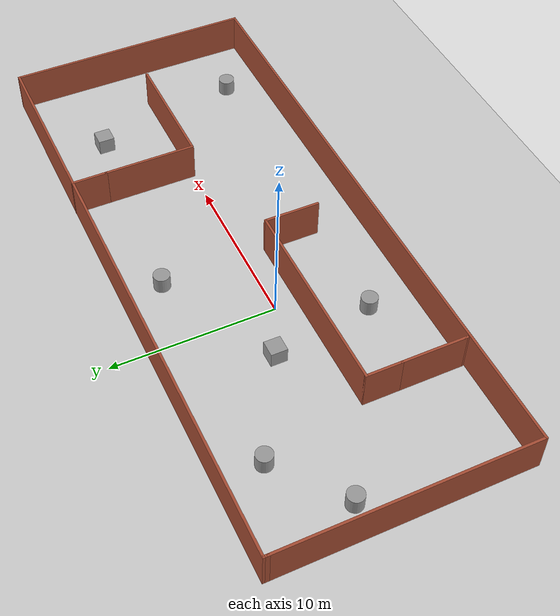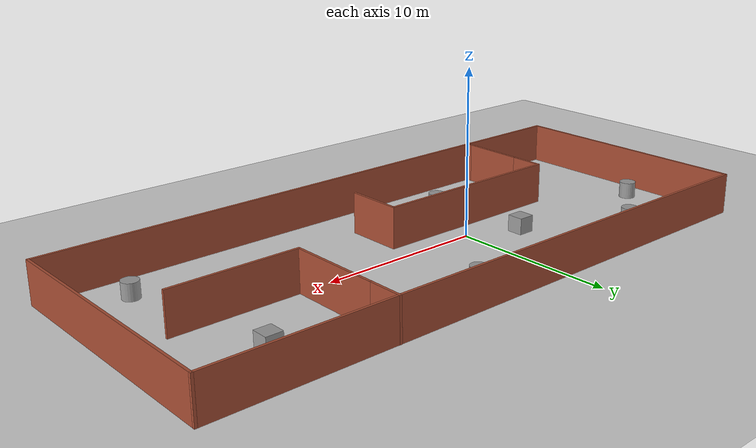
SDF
<sdf version="1.6">
 <world name="default">
  <light name="sun" type="directional">
   <pose>0 0 10 0 -0 0</pose>
   <diffuse>0.8 0.8 0.8 1</diffuse>
   <specular>0.2 0.2 0.2 1</specular>
   <attenuation>
    <range>1000</range>
    <constant>0.9</constant>
    <linear>0.01</linear>
    <quadratic>0.001</quadratic>
   </attenuation>
   <direction>-0.5 0.1 -0.9</direction>
  </light>
  <model name="ground_plane">
   <static>1</static>
   <link name="link">
    <collision name="collision">
     <geometry><plane><normal>0 0 1</normal><size>100 100</size></plane></geometry>
     <surface>
      <contact><collide_bitmask>65535</collide_bitmask></contact>
      <friction><ode><mu>100</mu><mu2>50</mu2></ode></friction>
     </surface>
    </collision>
    <visual name="visual">
     <cast_shadows>0</cast_shadows>
     <geometry><plane><normal>0 0 1</normal><size>100 100</size></plane></geometry>
     <material>
      <script><uri>file://media/materials/scripts/gazebo.material</uri><name>Gazebo/Concrete</name></script>
     </material>
    </visual>
   </link>
  </model>
  <gravity>0 0 -9.8</gravity>
  <magnetic_field>6e-06 2.3e-05 -4.2e-05</magnetic_field>
  <atmosphere type="adiabatic"/>
  <physics name="default_physics" default="0" type="ode">
   <max_step_size>0.001</max_step_size>
   <real_time_factor>1</real_time_factor>
   <real_time_update_rate>1000</real_time_update_rate>
  </physics>
  <scene><ambient>0.4 0.4 0.4 1</ambient><background>0.7 0.7 0.7 1</background><shadows>1</shadows></scene>
  <audio><device>default</device></audio>
  <spherical_coordinates>
   <surface_model>EARTH_WGS84</surface_model>
   <latitude_deg>0</latitude_deg>
   <longitude_deg>0</longitude_deg>
   <elevation>0</elevation>
   <heading_deg>0</heading_deg>
  </spherical_coordinates>
  <model name="demo_world">
   <pose>3.9983 0.012365 0 0 -0 0</pose>
   <link name="Wall_2">
    <collision name="Wall_2_Collision">
     <geometry><box><size>15.25 0.15 2.5</size></box></geometry>
     <pose>0 0 1.25 0 -0 0</pose>
    </collision>
    <visual name="Wall_2_Visual">
     <pose>0 0 1.25 0 -0 0</pose>
     <geometry><box><size>15.25 0.15 2.5</size></box></geometry>
     <material>
      <script><uri>file://media/materials/scripts/gazebo.material</uri><name>Gazebo/Bricks</name></script>
      <ambient>1 1 1 1</ambient>
     </material>
     <meta><layer>0</layer></meta>
    </visual>
    <pose>-18.675 -0.125 0 0 -0 -1.5708</pose>
   </link>
   <link name="Wall_3">
    <collision name="Wall_3_Collision">
     <geometry><box><size>37.5 0.15 2.5</size></box></geometry>
     <pose>0 0 1.25 0 -0 0</pose>
    </collision>
    <visual name="Wall_3_Visual">
     <pose>0 0 1.25 0 -0 0</pose>
     <geometry><box><size>37.5 0.15 2.5</size></box></geometry>
     <material>
      <script><uri>file://media/materials/scripts/gazebo.material</uri><name>Gazebo/Bricks</name></script>
      <ambient>1 1 1 1</ambient>
     </material>
     <meta><layer>0</layer></meta>
    </visual>
    <pose>0 -7.675 0 0 -0 0</pose>
   </link>
   <link name="Wall_4">
    <collision name="Wall_4_Collision">
     <geometry><box><size>15.5 0.15 2.5</size></box></geometry>
     <pose>0 0 1.25 0 -0 0</pose>
    </collision>
    <visual name="Wall_4_Visual">
     <pose>0 0 1.25 0 -0 0</pose>
     <geometry><box><size>15.5 0.15 2.5</size></box></geometry>
     <material>
      <script><uri>file://media/materials/scripts/gazebo.material</uri><name>Gazebo/Bricks</name></script>
      <ambient>1 1 1 1</ambient>
     </material>
     <meta><layer>0</layer></meta>
    </visual>
    <pose>18.675 0 0 0 -0 1.5708</pose>
   </link>
   <link name="Wall_5">
    <collision name="Wall_5_Collision">
     <geometry><box><size>37.5008 0.15 2.5</size></box></geometry>
     <pose>0 0 1.25 0 -0 0</pose>
    </collision>
    <visual name="Wall_5_Visual">
     <pose>0 0 1.25 0 -0 0</pose>
     <geometry><box><size>37.5008 0.15 2.5</size></box></geometry>
     <material>
      <script><uri>file://media/materials/scripts/gazebo.material</uri><name>Gazebo/Bricks</name></script>
      <ambient>1 1 1 1</ambient>
     </material>
     <meta><layer>0</layer></meta>
    </visual>
    <pose>0 7.675 0 0 -0 3.14159</pose>
   </link>
   <link name="Wall_6">
    <collision name="Wall_6_Collision">
     <geometry><box><size>0.4 0.15 2.5</size></box></geometry>
     <pose>0 0 1.25 0 -0 0</pose>
    </collision>
    <visual name="Wall_6_Visual">
     <pose>0 0 1.25 0 -0 0</pose>
     <geometry><box><size>0.4 0.15 2.5</size></box></geometry>
     <material>
      <script><uri>file://media/materials/scripts/gazebo.material</uri><name>Gazebo/Bricks</name></script>
      <ambient>1 1 1 1</ambient>
     </material>
     <meta><layer>0</layer></meta>
    </visual>
    <pose>-18.675 7.55 0 0 -0 -1.5708</pose>
   </link>
   <static>1</static>
  </model>
  <model name="Untitled">
   <pose>-1.67237 -4.43752 0 0 -0 0</pose>
   <link name="Wall_12">
    <collision name="Wall_12_Collision">
     <geometry><box><size>0.25 0.15 2.5</size></box></geometry>
     <pose>0 0 1.25 0 -0 0</pose>
    </collision>
    <visual name="Wall_12_Visual">
     <pose>0 0 1.25 0 -0 0</pose>
     <geometry><box><size>0.25 0.15 2.5</size></box></geometry>
     <material>
      <script><uri>file://media/materials/scripts/gazebo.material</uri><name>Gazebo/Bricks</name></script>
      <ambient>1 1 1 1</ambient>
     </material>
     <meta><layer>0</layer></meta>
    </visual>
    <pose>-6.05 -2.975 0 0 -0 -1.5708</pose>
   </link>
   <link name="Wall_14">
    <collision name="Wall_14_Collision">
     <geometry><box><size>2.25 0.15 2.5</size></box></geometry>
     <pose>0 0 1.25 0 -0 0</pose>
    </collision>
    <visual name="Wall_14_Visual">
     <pose>0 0 1.25 0 -0 0</pose>
     <geometry><box><size>2.25 0.15 2.5</size></box></geometry>
     <material>
      <script><uri>file://media/materials/scripts/gazebo.material</uri><name>Gazebo/Bricks</name></script>
      <ambient>1 1 1 1</ambient>
     </material>
     <meta><layer>0</layer></meta>
    </visual>
    <pose>-6.05 1.975 0 0 -0 1.5708</pose>
   </link>
   <link name="Wall_15">
    <collision name="Wall_15_Collision">
     <geometry><box><size>12.25 0.15 2.5</size></box></geometry>
     <pose>0 0 1.25 0 -0 0</pose>
    </collision>
    <visual name="Wall_15_Visual">
     <pose>0 0 1.25 0 -0 0</pose>
     <geometry><box><size>12.25 0.15 2.5</size></box></geometry>
     <material>
      <script><uri>file://media/materials/scripts/gazebo.material</uri><name>Gazebo/Bricks</name></script>
      <ambient>1 1 1 1</ambient>
     </material>
     <meta><layer>0</layer></meta>
    </visual>
    <pose>0 3.025 0 0 -0 0</pose>
   </link>
   <link name="Wall_16">
    <collision name="Wall_16_Collision">
     <geometry><box><size>3.5 0.15 2.5</size></box></geometry>
     <pose>0 0 1.25 0 -0 0</pose>
    </collision>
    <visual name="Wall_16_Visual">
     <pose>0 0 1.25 0 -0 0</pose>
     <geometry><box><size>3.5 0.15 2.5</size></box></geometry>
     <material>
      <script><uri>file://media/materials/scripts/gazebo.material</uri><name>Gazebo/Bricks</name></script>
      <ambient>1 1 1 1</ambient>
     </material>
     <meta><layer>0</layer></meta>
    </visual>
    <pose>6.05 1.35 0 0 -0 -1.5708</pose>
   </link>
   <link name="Wall_9">
    <collision name="Wall_9_Collision">
     <geometry><box><size>4 0.15 2.5</size></box></geometry>
     <pose>0 0 1.25 0 -0 0</pose>
    </collision>
    <visual name="Wall_9_Visual">
     <pose>0 0 1.25 0 -0 0</pose>
     <geometry><box><size>4 0.15 2.5</size></box></geometry>
     <material>
      <script><uri>file://media/materials/scripts/gazebo.material</uri><name>Gazebo/Bricks</name></script>
      <ambient>1 1 1 1</ambient>
     </material>
     <meta><layer>0</layer></meta>
    </visual>
    <pose>-6.05 -1 0 0 -0 -1.5708</pose>
   </link>
   <static>1</static>
  </model>
  <model name="Untitled2">
   <pose>15.7234 3.85268 0 0 -0 0</pose>
   <link name="Wall_10">
    <collision name="Wall_10_Collision">
     <geometry><box><size>2.25 0.15 2.5</size></box></geometry>
     <pose>0 0 1.25 0 -0 0</pose>
    </collision>
    <visual name="Wall_10_Visual">
     <pose>0 0 1.25 0 -0 0</pose>
     <geometry><box><size>2.25 0.15 2.5</size></box></geometry>
     <material>
      <script><uri>file://media/materials/scripts/gazebo.material</uri><name>Gazebo/Bricks</name></script>
      <ambient>1 1 1 1</ambient>
     </material>
     <meta><layer>0</layer></meta>
    </visual>
    <pose>-3.8 2.8 0 0 -0 1.5708</pose>
   </link>
   <link name="Wall_7">
    <collision name="Wall_7_Collision">
     <geometry><box><size>5.75 0.15 2.5</size></box></geometry>
     <pose>0 0 1.25 0 -0 0</pose>
    </collision>
    <visual name="Wall_7_Visual">
     <pose>0 0 1.25 0 -0 0</pose>
     <geometry><box><size>5.75 0.15 2.5</size></box></geometry>
     <material>
      <script><uri>file://media/materials/scripts/gazebo.material</uri><name>Gazebo/Bricks</name></script>
      <ambient>1 1 1 1</ambient>
     </material>
     <meta><layer>0</layer></meta>
    </visual>
    <pose>-3.8 -1.05 0 0 -0 -1.5708</pose>
   </link>
   <link name="Wall_8">
    <collision name="Wall_8_Collision">
     <geometry><box><size>7.75 0.15 2.5</size></box></geometry>
     <pose>0 0 1.25 0 -0 0</pose>
    </collision>
    <visual name="Wall_8_Visual">
     <pose>0 0 1.25 0 -0 0</pose>
     <geometry><box><size>7.75 0.15 2.5</size></box></geometry>
     <material>
      <script><uri>file://media/materials/scripts/gazebo.material</uri><name>Gazebo/Bricks</name></script>
      <ambient>1 1 1 1</ambient>
     </material>
     <meta><layer>0</layer></meta>
    </visual>
    <pose>0 -3.85 0 0 -0 0</pose>
   </link>
   <static>1</static>
  </model>
  <model name="unit_cylinder">
   <pose>-8.93216 4.91079 0.499992 -3e-06 4e-06 0</pose>
   <link name="link">
    <inertial>
     <mass>1</mass>
     <inertia><ixx>0.145833</ixx><ixy>0</ixy><ixz>0</ixz><iyy>0.145833</iyy><iyz>0</iyz><izz>0.125</izz></inertia>
    </inertial>
    <collision name="collision">
     <geometry><cylinder><radius>0.5</radius><length>1</length></cylinder></geometry>
    </collision>
    <visual name="visual">
     <geometry><cylinder><radius>0.5</radius><length>1</length></cylinder></geometry>
     <material>
      <script><name>Gazebo/Grey</name><uri>file://media/materials/scripts/gazebo.material</uri></script>
     </material>
    </visual>
   </link>
  </model>
  <model name="unit_cylinder_0">
   <pose>-12.8401 1.81598 0.499998 3e-06 -4e-06 0</pose>
   <link name="link">
    <inertial>
     <mass>1</mass>
     <inertia><ixx>0.145833</ixx><ixy>0</ixy><ixz>0</ixz><iyy>0.145833</iyy><iyz>0</iyz><izz>0.125</izz></inertia>
    </inertial>
    <collision name="collision">
     <geometry><cylinder><radius>0.5</radius><length>1</length></cylinder></geometry>
    </collision>
    <visual name="visual">
     <geometry><cylinder><radius>0.5</radius><length>1</length></cylinder></geometry>
     <material>
      <script><name>Gazebo/Grey</name><uri>file://media/materials/scripts/gazebo.material</uri></script>
     </material>
    </visual>
   </link>
  </model>
  <model name="unit_box">
   <pose>-3.0242 1.46134 0.499995 0 1e-05 0</pose>
   <link name="link">
    <inertial>
     <mass>1</mass>
     <inertia>
      <ixx>0.166667</ixx>
      <ixy>0</ixy>
      <ixz>0</ixz>
      <iyy>0.166667</iyy>
      <iyz>0</iyz>
      <izz>0.166667</izz>
     </inertia>
    </inertial>
    <collision name="collision"><geometry><box><size>1 1 1</size></box></geometry></collision>
    <visual name="visual">
     <geometry><box><size>1 1 1</size></box></geometry>
     <material>
      <script><name>Gazebo/Grey</name><uri>file://media/materials/scripts/gazebo.material</uri></script>
     </material>
    </visual>
   </link>
  </model>
  <model name="unit_cylinder_1">
   <pose>4.26009 5.17823 0.499997 3e-06 3e-06 0</pose>
   <link name="link">
    <inertial>
     <mass>1</mass>
     <inertia><ixx>0.145833</ixx><ixy>0</ixy><ixz>0</ixz><iyy>0.145833</iyy><iyz>0</iyz><izz>0.125</izz></inertia>
    </inertial>
    <collision name="collision">
     <geometry><cylinder><radius>0.5</radius><length>1</length></cylinder></geometry>
    </collision>
    <visual name="visual">
     <geometry><cylinder><radius>0.5</radius><length>1</length></cylinder></geometry>
     <material>
      <script><name>Gazebo/Grey</name><uri>file://media/materials/scripts/gazebo.material</uri></script>
     </material>
    </visual>
   </link>
  </model>
  <model name="unit_cylinder_2">
   <pose>-2.12292 -4.80477 0.499997 3e-06 4e-06 -0</pose>
   <link name="link">
    <inertial>
     <mass>1</mass>
     <inertia><ixx>0.145833</ixx><ixy>0</ixy><ixz>0</ixz><iyy>0.145833</iyy><iyz>0</iyz><izz>0.125</izz></inertia>
    </inertial>
    <collision name="collision">
     <geometry><cylinder><radius>0.5</radius><length>1</length></cylinder></geometry>
    </collision>
    <visual name="visual">
     <geometry><cylinder><radius>0.5</radius><length>1</length></cylinder></geometry>
     <material>
      <script><name>Gazebo/Grey</name><uri>file://media/materials/scripts/gazebo.material</uri></script>
     </material>
    </visual>
   </link>
  </model>
  <model name="unit_box_0">
   <pose>16.7088 4.14063 0.499995 -1e-05 -0 0</pose>
   <link name="link">
    <inertial>
     <mass>1</mass>
     <inertia>
      <ixx>0.166667</ixx>
      <ixy>0</ixy>
      <ixz>0</ixz>
      <iyy>0.166667</iyy>
      <iyz>0</iyz>
      <izz>0.166667</izz>
     </inertia>
    </inertial>
    <collision name="collision"><geometry><box><size>1 1 1</size></box></geometry></collision>
    <visual name="visual">
     <geometry><box><size>1 1 1</size></box></geometry>
     <material>
      <script><name>Gazebo/Grey</name><uri>file://media/materials/scripts/gazebo.material</uri></script>
     </material>
    </visual>
   </link>
  </model>
  <model name="unit_cylinder_3">
   <pose>18.6231 -5.24138 0.499997 3e-06 4e-06 -0</pose>
   <link name="link">
    <inertial>
     <mass>1</mass>
     <inertia><ixx>0.145833</ixx><ixy>0</ixy><ixz>0</ixz><iyy>0.145833</iyy><iyz>0</iyz><izz>0.125</izz></inertia>
    </inertial>
    <collision name="collision">
     <geometry><cylinder><radius>0.5</radius><length>1</length></cylinder></geometry>
    </collision>
    <visual name="visual">
     <geometry><cylinder><radius>0.5</radius><length>1</length></cylinder></geometry>
     <material>
      <script><name>Gazebo/Grey</name><uri>file://media/materials/scripts/gazebo.material</uri></script>
     </material>
    </visual>
   </link>
  </model>
 </world>
</sdf>
